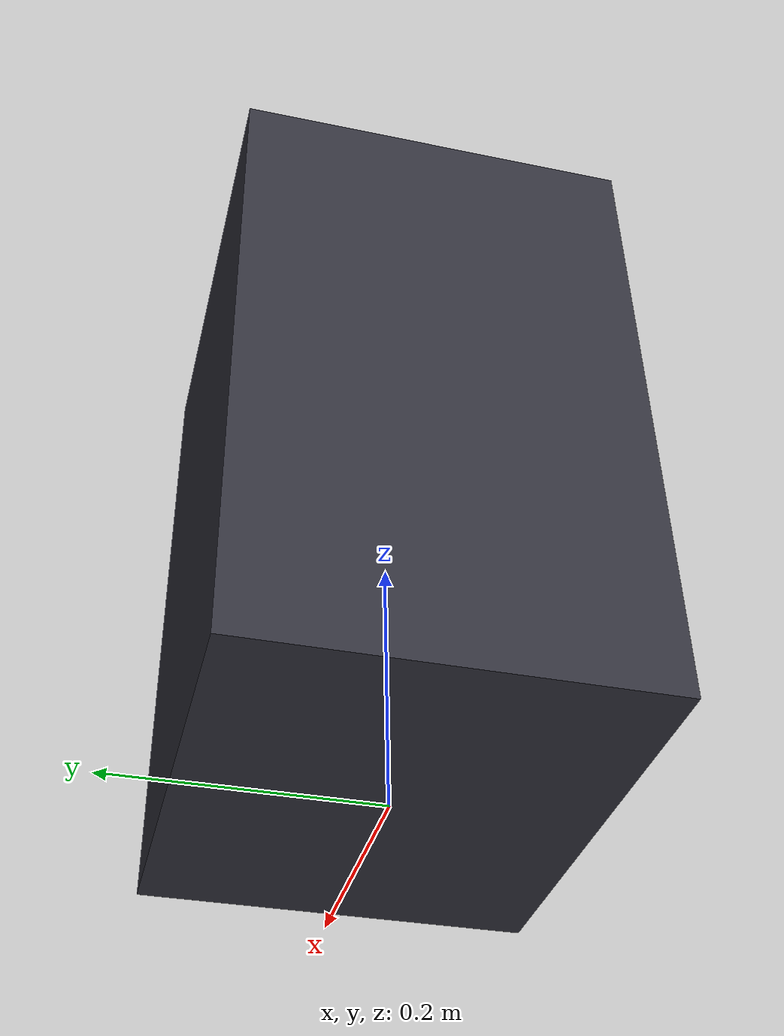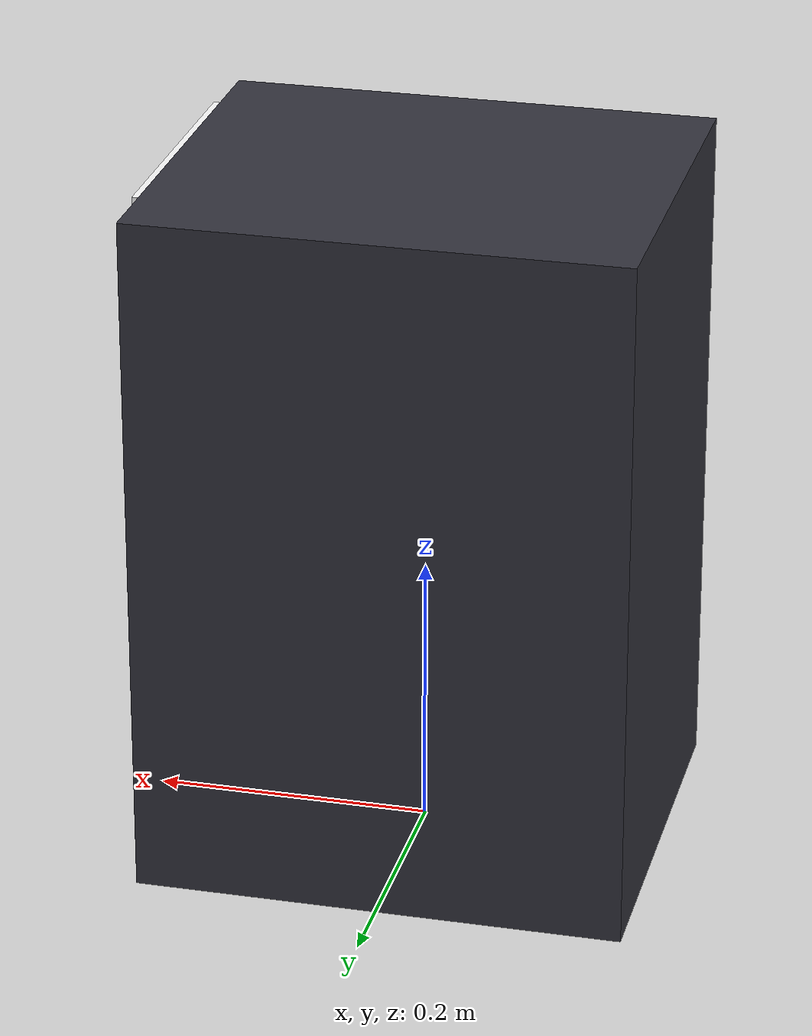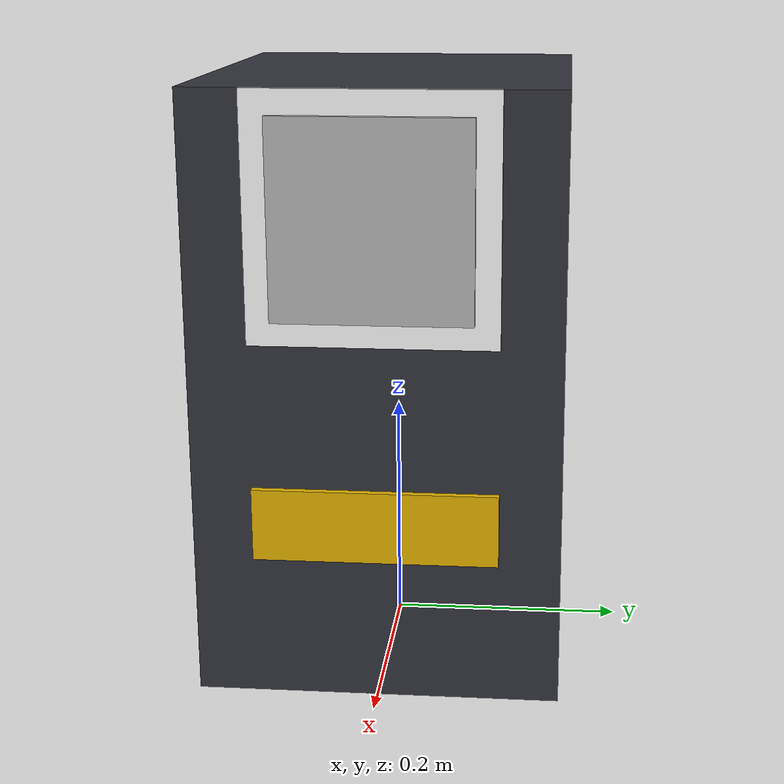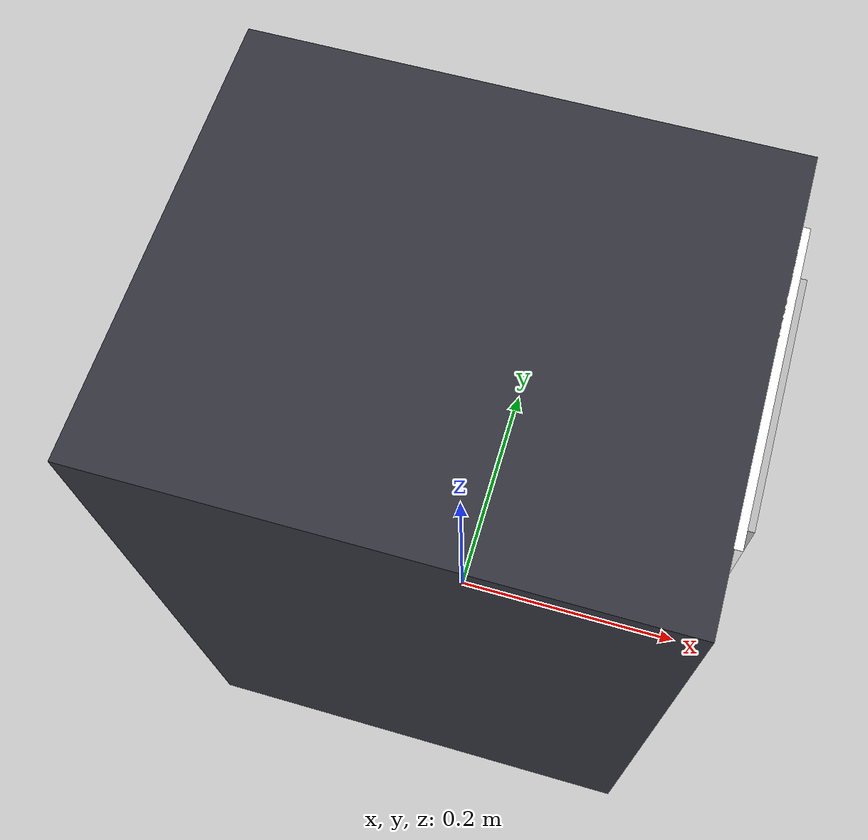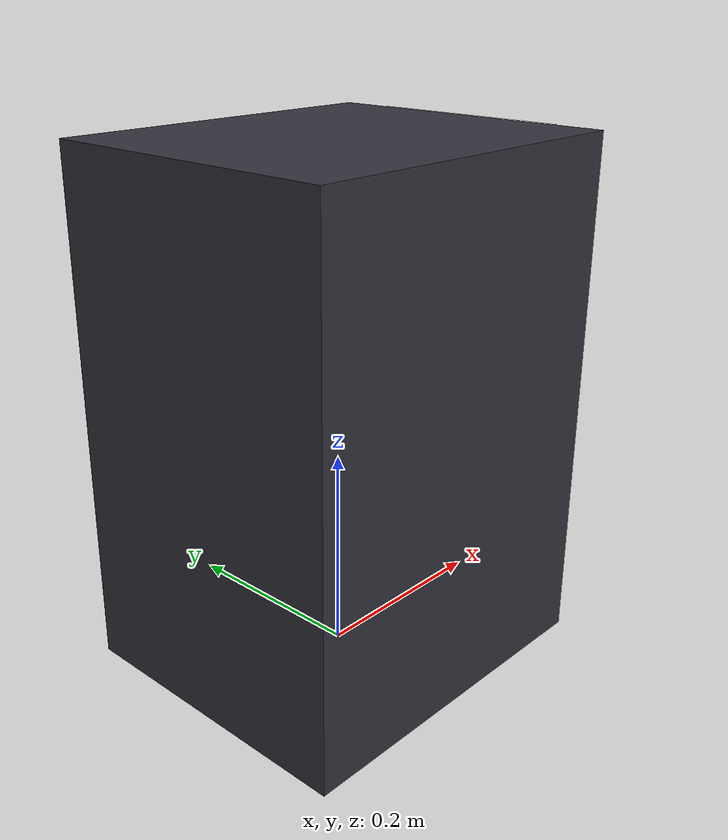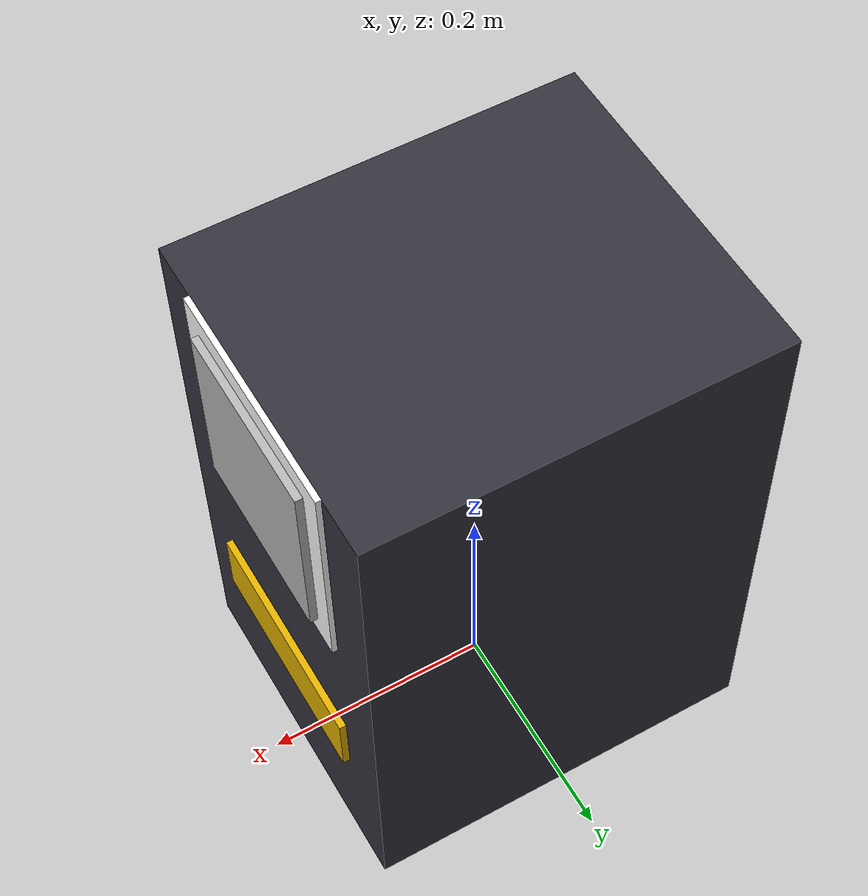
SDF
<?xml version="1.0"?>
<sdf version="1.6">
  <model name="pguard_charging_station">
    <static>true</static>

    <link name="base">
      <!-- Corps principal de la station (socle + colonne) -->
      <visual name="body_visual">
        <pose>0 0 0.25 0 0 0</pose>
        <geometry>
          <box>
            <size>0.35 0.30 0.50</size>
          </box>
        </geometry>
        <material>
          <ambient>0.15 0.15 0.18 1</ambient>
          <diffuse>0.2 0.2 0.24 1</diffuse>
          <specular>0.1 0.1 0.1 1</specular>
        </material>
      </visual>

      <collision name="body_collision">
        <pose>0 0 0.25 0 0 0</pose>
        <geometry>
          <box>
            <size>0.35 0.30 0.50</size>
          </box>
        </geometry>
      </collision>

      <!-- Bande de contact avant (repere visuel pour l'alignement final, non
           fonctionnelle electriquement en simulation, purement visuelle) -->
      <visual name="contact_strip_visual">
        <pose>0.176 0 0.15 0 0 0</pose>
        <geometry>
          <box>
            <size>0.01 0.20 0.06</size>
          </box>
        </geometry>
        <material>
          <ambient>0.8 0.6 0.0 1</ambient>
          <diffuse>0.9 0.7 0.0 1</diffuse>
        </material>
      </visual>

      <visual name="apriltag_panel_visual">
        <pose>0.181 0 0.40 0 0 0</pose>
        <geometry>
          <box>
            <size>0.01 0.16 0.16</size>
          </box>
        </geometry>
        <material>
          <script>
            <uri>model://pguard_charging_station/materials/scripts</uri>
            <uri>model://pguard_charging_station/materials/textures</uri>
            <name>AprilTag/Tag36h11_00</name>
          </script>
        </material>
      </visual>

      <!-- Cadre blanc autour du panneau, ameliore le contraste/la detection -->
      <visual name="apriltag_frame_visual">
        <pose>0.177 0 0.40 0 0 0</pose>
        <geometry>
          <box>
            <size>0.005 0.20 0.20</size>
          </box>
        </geometry>
        <material>
          <ambient>1 1 1 1</ambient>
          <diffuse>1 1 1 1</diffuse>
        </material>
      </visual>
    </link>
  </model>
</sdf>
